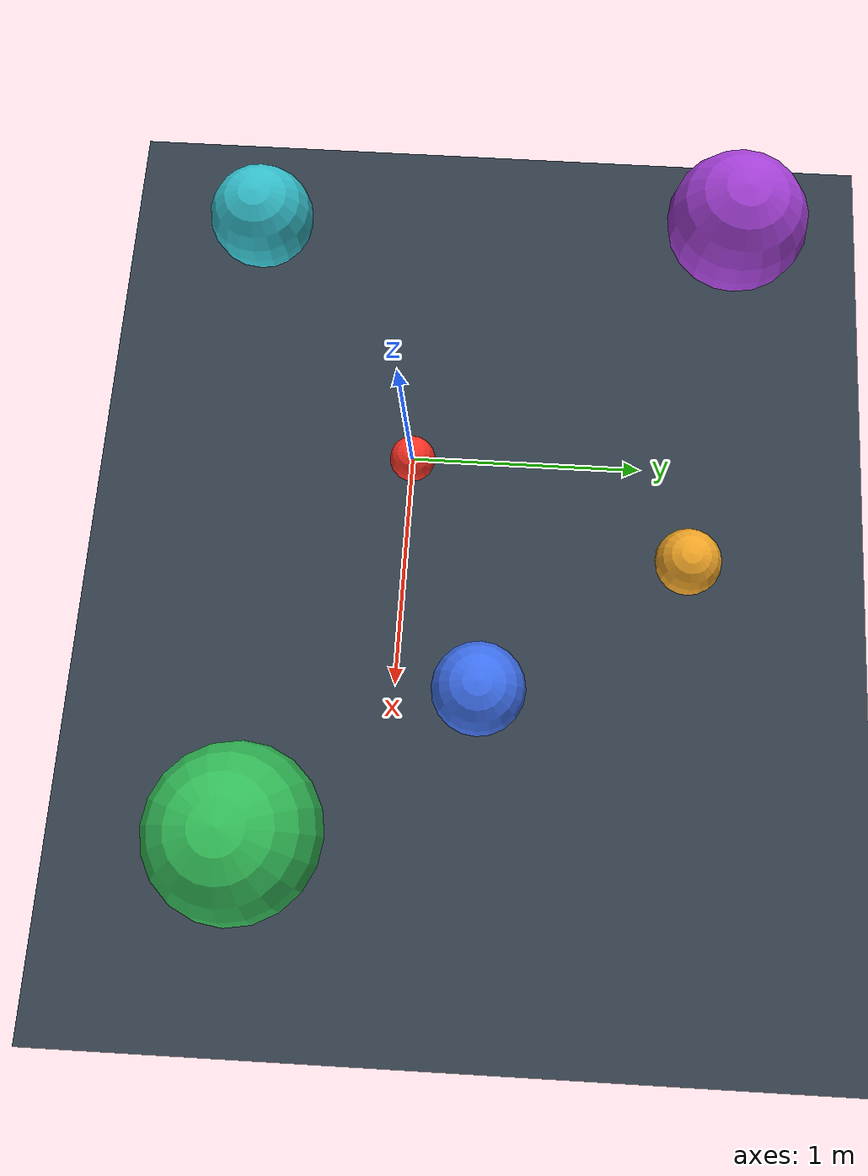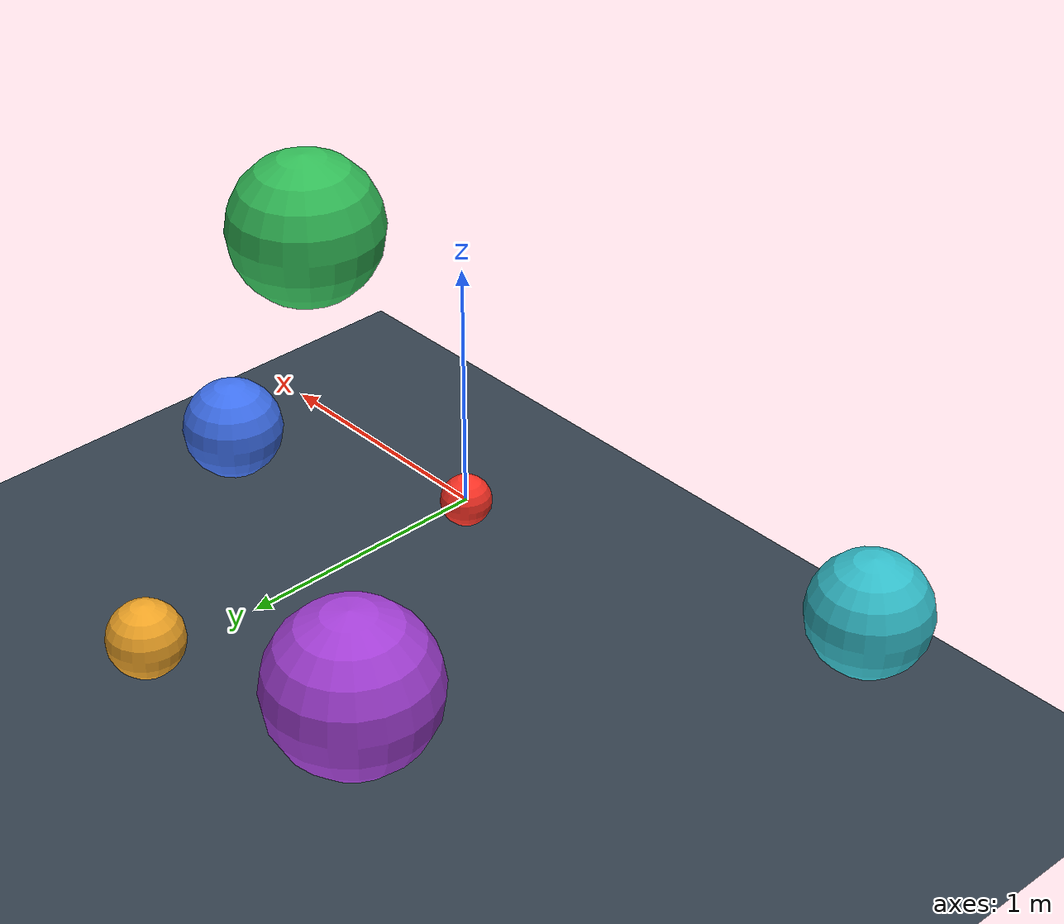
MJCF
<mujoco model="double_integrator_3d">
    <compiler autolimits="true" angle="radian" />

    <!-- Zero gravity produces ideal translational double-integrator dynamics. -->
    <option timestep="0.002" gravity="0 0 0" integrator="RK4" />

    <visual>
        <headlight ambient="0.7 0.7 0.7" />
    </visual>

    <asset>
        <texture
            name="grid_texture"
            type="2d"
            builtin="checker"
            rgb1="0.15 0.20 0.25"
            rgb2="0.25 0.30 0.35"
            width="512"
            height="512" />

        <material
            name="grid"
            texture="grid_texture"
            texrepeat="10 10"
            reflectance="0.1" />
    </asset>

    <default>
        <default class="wheel">
            <geom
                type="cylinder"
                size=".03 .01"
                rgba=".5 .5 1 1"
                friction="2.0 0.5 0.01" />
        </default>

        <default class="decor">
            <site type="box" rgba=".5 1 .5 1" />
        </default>

        <default class="obstacle">
            <geom
                type="sphere"
                rgba="0.25 0.45 0.95 1"
                friction="0.8 0.1 0.01" />
        </default>
    </default>

    <worldbody>
        <!-- Floor below the robot, allowing free motion in 3D. -->
        <geom
            name="floor"
            type="plane"
            pos="0 0 -1"
            size="5 5 .01"
            material="grid" />

        <light pos="0 0 5" dir="0 0 -1" />

        <body name="robot" pos="0 0 0">
            <joint
                name="robot_x"
                type="slide"
                axis="1 0 0"
                damping="0" />

            <joint
                name="robot_y"
                type="slide"
                axis="0 1 0"
                damping="0" />

            <joint
                name="robot_z"
                type="slide"
                axis="0 0 1"
                damping="0" />

            <geom
                name="robot_geom"
                type="sphere"
                size="0.10"
                mass="1.0"
                rgba="1.0 0.20 0.15 1"
                friction="0.4 0.05 0.005" />

            <site
                name="robot_center"
                type="sphere"
                size="0.015"
                rgba="1 1 1 1" />
        </body>

        <!-- Fixed spherical obstacles. -->

        <body name="obstacle_1" pos="1.00 0.35 0.00">
            <geom
                name="obstacle_1_geom"
                class="obstacle"
                size="0.20" />
        </body>

        <body name="obstacle_2" pos="1.65 -0.55 0.30">
            <geom
                name="obstacle_2_geom"
                class="obstacle"
                size="0.35"
                rgba="0.20 0.75 0.35 1" />
        </body>

        <body name="obstacle_3" pos="0.35 1.25 -0.20">
            <geom
                name="obstacle_3_geom"
                class="obstacle"
                size="0.15"
                rgba="0.95 0.65 0.15 1" />
        </body>

        <body name="obstacle_4" pos="-1.00 1.35 0.45">
            <geom
                name="obstacle_4_geom"
                class="obstacle"
                size="0.30"
                rgba="0.65 0.25 0.85 1" />
        </body>

        <body name="obstacle_5" pos="-1.30 -0.85 -0.25">
            <geom
                name="obstacle_5_geom"
                class="obstacle"
                size="0.25"
                rgba="0.20 0.75 0.80 1" />
        </body>
    </worldbody>

    <!-- Controls are forces [Fx, Fy, Fz]. -->
    <actuator>
        <motor
            name="force_x"
            joint="robot_x"
            gear="1"
            ctrlrange="-5 5" />

        <motor
            name="force_y"
            joint="robot_y"
            gear="1"
            ctrlrange="-5 5" />

        <motor
            name="force_z"
            joint="robot_z"
            gear="1"
            ctrlrange="-5 5" />
    </actuator>

    <sensor>
        <framepos
            name="robot_position"
            objtype="body"
            objname="robot" />

        <framelinvel
            name="robot_velocity"
            objtype="body"
            objname="robot" />
    </sensor>
</mujoco>
